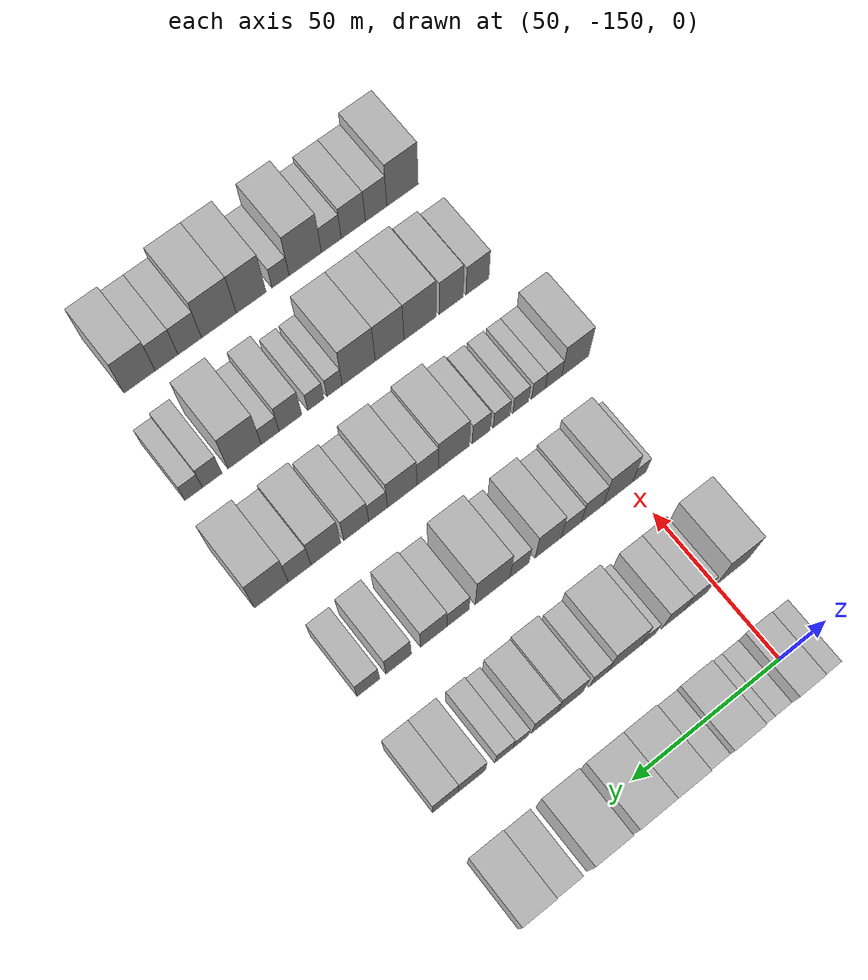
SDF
<sdf version="1.6">
 <world name="default">
  <model name="building_50">
   <static>1</static>
   <pose>50.0000 -154.1247 0 0.000000 0.000000 0.000000</pose>
   <link name="link">
    <pose>0 0 7.50 0 0 0</pose>
    <collision name="collision"><geometry><box><size>20.0000 6.9383 15.0000</size></box></geometry></collision>
    <visual name="visual">
     <cast_shadows>0</cast_shadows>
     <geometry><box><size>20.0000 6.9383 15.0000</size></box></geometry>
     <material>
      <script>
       <uri>model://HANNAS_wall/materials/scripts</uri>
       <uri>model://HANNAS_wall/materials/textures</uri>
       <name>vrc/HANNAS_wall</name>
      </script>
     </material>
    </visual>
   </link>
  </model>
  <model name="building_51">
   <static>1</static>
   <pose>50.0000 -146.2680 0 0.000000 0.000000 0.000000</pose>
   <link name="link">
    <pose>0 0 10.50 0 0 0</pose>
    <collision name="collision"><geometry><box><size>20.0000 8.7750 21.0000</size></box></geometry></collision>
    <visual name="visual">
     <cast_shadows>0</cast_shadows>
     <geometry><box><size>20.0000 8.7750 21.0000</size></box></geometry>
     <material>
      <script>
       <uri>model://HANNAS_wall/materials/scripts</uri>
       <uri>model://HANNAS_wall/materials/textures</uri>
       <name>vrc/HANNAS_wall</name>
      </script>
     </material>
    </visual>
   </link>
  </model>
  <model name="building_52">
   <static>1</static>
   <pose>50.0000 -139.1206 0 0.000000 0.000000 0.000000</pose>
   <link name="link">
    <pose>0 0 6.00 0 0 0</pose>
    <collision name="collision"><geometry><box><size>20.0000 5.5198 12.0000</size></box></geometry></collision>
    <visual name="visual">
     <cast_shadows>0</cast_shadows>
     <geometry><box><size>20.0000 5.5198 12.0000</size></box></geometry>
     <material>
      <script>
       <uri>model://HANNAS_wall/materials/scripts</uri>
       <uri>model://HANNAS_wall/materials/textures</uri>
       <name>vrc/HANNAS_wall</name>
      </script>
     </material>
    </visual>
   </link>
  </model>
  <model name="building_53">
   <static>1</static>
   <pose>50.0000 -133.7741 0 0.000000 0.000000 0.000000</pose>
   <link name="link">
    <pose>0 0 6.00 0 0 0</pose>
    <collision name="collision"><geometry><box><size>20.0000 5.1732 12.0000</size></box></geometry></collision>
    <visual name="visual">
     <cast_shadows>0</cast_shadows>
     <geometry><box><size>20.0000 5.1732 12.0000</size></box></geometry>
     <material>
      <script>
       <uri>model://HANNAS_wall/materials/scripts</uri>
       <uri>model://HANNAS_wall/materials/textures</uri>
       <name>vrc/HANNAS_wall</name>
      </script>
     </material>
    </visual>
   </link>
  </model>
  <model name="building_54">
   <static>1</static>
   <pose>50.0000 -126.0148 0 0.000000 0.000000 0.000000</pose>
   <link name="link">
    <pose>0 0 10.50 0 0 0</pose>
    <collision name="collision"><geometry><box><size>20.0000 10.3454 21.0000</size></box></geometry></collision>
    <visual name="visual">
     <cast_shadows>0</cast_shadows>
     <geometry><box><size>20.0000 10.3454 21.0000</size></box></geometry>
     <material>
      <script>
       <uri>model://HANNAS_wall/materials/scripts</uri>
       <uri>model://HANNAS_wall/materials/textures</uri>
       <name>vrc/HANNAS_wall</name>
      </script>
     </material>
    </visual>
   </link>
  </model>
  <model name="building_55">
   <static>1</static>
   <pose>50.0000 -117.3348 0 0.000000 0.000000 0.000000</pose>
   <link name="link">
    <pose>0 0 7.50 0 0 0</pose>
    <collision name="collision"><geometry><box><size>20.0000 7.0146 15.0000</size></box></geometry></collision>
    <visual name="visual">
     <cast_shadows>0</cast_shadows>
     <geometry><box><size>20.0000 7.0146 15.0000</size></box></geometry>
     <material>
      <script>
       <uri>model://HANNAS_wall/materials/scripts</uri>
       <uri>model://HANNAS_wall/materials/textures</uri>
       <name>vrc/HANNAS_wall</name>
      </script>
     </material>
    </visual>
   </link>
  </model>
  <model name="building_56">
   <static>1</static>
   <pose>50.0000 -107.5640 0 0.000000 0.000000 0.000000</pose>
   <link name="link">
    <pose>0 0 12.00 0 0 0</pose>
    <collision name="collision"><geometry><box><size>20.0000 10.5270 24.0000</size></box></geometry></collision>
    <visual name="visual">
     <cast_shadows>0</cast_shadows>
     <geometry><box><size>20.0000 10.5270 24.0000</size></box></geometry>
     <material>
      <script>
       <uri>model://HANNAS_wall/materials/scripts</uri>
       <uri>model://HANNAS_wall/materials/textures</uri>
       <name>vrc/HANNAS_wall</name>
      </script>
     </material>
    </visual>
   </link>
  </model>
  <model name="building_57">
   <static>1</static>
   <pose>50.0000 -96.4143 0 0.000000 0.000000 0.000000</pose>
   <link name="link">
    <pose>0 0 12.00 0 0 0</pose>
    <collision name="collision"><geometry><box><size>20.0000 11.7725 24.0000</size></box></geometry></collision>
    <visual name="visual">
     <cast_shadows>0</cast_shadows>
     <geometry><box><size>20.0000 11.7725 24.0000</size></box></geometry>
     <material>
      <script>
       <uri>model://HANNAS_wall/materials/scripts</uri>
       <uri>model://HANNAS_wall/materials/textures</uri>
       <name>vrc/HANNAS_wall</name>
      </script>
     </material>
    </visual>
   </link>
  </model>
  <model name="building_58">
   <static>1</static>
   <pose>50.0000 -82.6870 0 0.000000 0.000000 0.000000</pose>
   <link name="link">
    <pose>0 0 12.00 0 0 0</pose>
    <collision name="collision"><geometry><box><size>20.0000 11.6820 24.0000</size></box></geometry></collision>
    <visual name="visual">
     <cast_shadows>0</cast_shadows>
     <geometry><box><size>20.0000 11.6820 24.0000</size></box></geometry>
     <material>
      <script>
       <uri>model://HANNAS_wall/materials/scripts</uri>
       <uri>model://HANNAS_wall/materials/textures</uri>
       <name>vrc/HANNAS_wall</name>
      </script>
     </material>
    </visual>
   </link>
  </model>
  <model name="building_59">
   <static>1</static>
   <pose>50.0000 -69.5733 0 0.000000 0.000000 0.000000</pose>
   <link name="link">
    <pose>0 0 9.00 0 0 0</pose>
    <collision name="collision"><geometry><box><size>20.0000 8.5456 18.0000</size></box></geometry></collision>
    <visual name="visual">
     <cast_shadows>0</cast_shadows>
     <geometry><box><size>20.0000 8.5456 18.0000</size></box></geometry>
     <material>
      <script>
       <uri>model://HANNAS_wall/materials/scripts</uri>
       <uri>model://HANNAS_wall/materials/textures</uri>
       <name>vrc/HANNAS_wall</name>
      </script>
     </material>
    </visual>
   </link>
  </model>
  <model name="building_60">
   <static>1</static>
   <pose>50.0000 -60.0405 0 0.000000 0.000000 0.000000</pose>
   <link name="link">
    <pose>0 0 12.00 0 0 0</pose>
    <collision name="collision"><geometry><box><size>20.0000 10.5199 24.0000</size></box></geometry></collision>
    <visual name="visual">
     <cast_shadows>0</cast_shadows>
     <geometry><box><size>20.0000 10.5199 24.0000</size></box></geometry>
     <material>
      <script>
       <uri>model://HANNAS_wall/materials/scripts</uri>
       <uri>model://HANNAS_wall/materials/textures</uri>
       <name>vrc/HANNAS_wall</name>
      </script>
     </material>
    </visual>
   </link>
  </model>
  <model name="building_180">
   <static>1</static>
   <pose>85.0000 -155.5584 0 0.000000 0.000000 0.000000</pose>
   <link name="link">
    <pose>0 0 12.00 0 0 0</pose>
    <collision name="collision"><geometry><box><size>20.0000 11.1666 24.0000</size></box></geometry></collision>
    <visual name="visual">
     <cast_shadows>0</cast_shadows>
     <geometry><box><size>20.0000 11.1666 24.0000</size></box></geometry>
     <material>
      <script>
       <uri>model://HANNAS_wall/materials/scripts</uri>
       <uri>model://HANNAS_wall/materials/textures</uri>
       <name>vrc/HANNAS_wall</name>
      </script>
     </material>
    </visual>
   </link>
  </model>
  <model name="building_181">
   <static>1</static>
   <pose>85.0000 -142.9468 0 0.000000 0.000000 0.000000</pose>
   <link name="link">
    <pose>0 0 9.00 0 0 0</pose>
    <collision name="collision"><geometry><box><size>20.0000 8.0565 18.0000</size></box></geometry></collision>
    <visual name="visual">
     <cast_shadows>0</cast_shadows>
     <geometry><box><size>20.0000 8.0565 18.0000</size></box></geometry>
     <material>
      <script>
       <uri>model://HANNAS_wall/materials/scripts</uri>
       <uri>model://HANNAS_wall/materials/textures</uri>
       <name>vrc/HANNAS_wall</name>
      </script>
     </material>
    </visual>
   </link>
  </model>
  <model name="building_182">
   <static>1</static>
   <pose>85.0000 -135.1040 0 0.000000 0.000000 0.000000</pose>
   <link name="link">
    <pose>0 0 9.00 0 0 0</pose>
    <collision name="collision"><geometry><box><size>20.0000 7.6291 18.0000</size></box></geometry></collision>
    <visual name="visual">
     <cast_shadows>0</cast_shadows>
     <geometry><box><size>20.0000 7.6291 18.0000</size></box></geometry>
     <material>
      <script>
       <uri>model://HANNAS_wall/materials/scripts</uri>
       <uri>model://HANNAS_wall/materials/textures</uri>
       <name>vrc/HANNAS_wall</name>
      </script>
     </material>
    </visual>
   </link>
  </model>
  <model name="building_183">
   <static>1</static>
   <pose>85.0000 -126.8240 0 0.000000 0.000000 0.000000</pose>
   <link name="link">
    <pose>0 0 6.00 0 0 0</pose>
    <collision name="collision"><geometry><box><size>20.0000 4.9309 12.0000</size></box></geometry></collision>
    <visual name="visual">
     <cast_shadows>0</cast_shadows>
     <geometry><box><size>20.0000 4.9309 12.0000</size></box></geometry>
     <material>
      <script>
       <uri>model://HANNAS_wall/materials/scripts</uri>
       <uri>model://HANNAS_wall/materials/textures</uri>
       <name>vrc/HANNAS_wall</name>
      </script>
     </material>
    </visual>
   </link>
  </model>
  <model name="building_184">
   <static>1</static>
   <pose>85.0000 -118.6342 0 0.000000 0.000000 0.000000</pose>
   <link name="link">
    <pose>0 0 12.00 0 0 0</pose>
    <collision name="collision"><geometry><box><size>20.0000 11.4488 24.0000</size></box></geometry></collision>
    <visual name="visual">
     <cast_shadows>0</cast_shadows>
     <geometry><box><size>20.0000 11.4488 24.0000</size></box></geometry>
     <material>
      <script>
       <uri>model://HANNAS_wall/materials/scripts</uri>
       <uri>model://HANNAS_wall/materials/textures</uri>
       <name>vrc/HANNAS_wall</name>
      </script>
     </material>
    </visual>
   </link>
  </model>
  <model name="building_185">
   <static>1</static>
   <pose>85.0000 -109.8311 0 0.000000 0.000000 0.000000</pose>
   <link name="link">
    <pose>0 0 7.50 0 0 0</pose>
    <collision name="collision"><geometry><box><size>20.0000 6.1575 15.0000</size></box></geometry></collision>
    <visual name="visual">
     <cast_shadows>0</cast_shadows>
     <geometry><box><size>20.0000 6.1575 15.0000</size></box></geometry>
     <material>
      <script>
       <uri>model://HANNAS_wall/materials/scripts</uri>
       <uri>model://HANNAS_wall/materials/textures</uri>
       <name>vrc/HANNAS_wall</name>
      </script>
     </material>
    </visual>
   </link>
  </model>
  <model name="building_186">
   <static>1</static>
   <pose>85.0000 -100.3674 0 0.000000 0.000000 0.000000</pose>
   <link name="link">
    <pose>0 0 10.50 0 0 0</pose>
    <collision name="collision"><geometry><box><size>20.0000 8.7698 21.0000</size></box></geometry></collision>
    <visual name="visual">
     <cast_shadows>0</cast_shadows>
     <geometry><box><size>20.0000 8.7698 21.0000</size></box></geometry>
     <material>
      <script>
       <uri>model://HANNAS_wall/materials/scripts</uri>
       <uri>model://HANNAS_wall/materials/textures</uri>
       <name>vrc/HANNAS_wall</name>
      </script>
     </material>
    </visual>
   </link>
  </model>
  <model name="building_187">
   <static>1</static>
   <pose>85.0000 -91.7624 0 0.000000 0.000000 0.000000</pose>
   <link name="link">
    <pose>0 0 9.00 0 0 0</pose>
    <collision name="collision"><geometry><box><size>20.0000 8.4401 18.0000</size></box></geometry></collision>
    <visual name="visual">
     <cast_shadows>0</cast_shadows>
     <geometry><box><size>20.0000 8.4401 18.0000</size></box></geometry>
     <material>
      <script>
       <uri>model://HANNAS_wall/materials/scripts</uri>
       <uri>model://HANNAS_wall/materials/textures</uri>
       <name>vrc/HANNAS_wall</name>
      </script>
     </material>
    </visual>
   </link>
  </model>
  <model name="building_188">
   <static>1</static>
   <pose>85.0000 -84.0880 0 0.000000 0.000000 0.000000</pose>
   <link name="link">
    <pose>0 0 6.00 0 0 0</pose>
    <collision name="collision"><geometry><box><size>20.0000 4.9088 12.0000</size></box></geometry></collision>
    <visual name="visual">
     <cast_shadows>0</cast_shadows>
     <geometry><box><size>20.0000 4.9088 12.0000</size></box></geometry>
     <material>
      <script>
       <uri>model://HANNAS_wall/materials/scripts</uri>
       <uri>model://HANNAS_wall/materials/textures</uri>
       <name>vrc/HANNAS_wall</name>
      </script>
     </material>
    </visual>
   </link>
  </model>
  <model name="building_189">
   <static>1</static>
   <pose>85.0000 -78.6306 0 0.000000 0.000000 0.000000</pose>
   <link name="link">
    <pose>0 0 7.50 0 0 0</pose>
    <collision name="collision"><geometry><box><size>20.0000 6.0060 15.0000</size></box></geometry></collision>
    <visual name="visual">
     <cast_shadows>0</cast_shadows>
     <geometry><box><size>20.0000 6.0060 15.0000</size></box></geometry>
     <material>
      <script>
       <uri>model://HANNAS_wall/materials/scripts</uri>
       <uri>model://HANNAS_wall/materials/textures</uri>
       <name>vrc/HANNAS_wall</name>
      </script>
     </material>
    </visual>
   </link>
  </model>
  <model name="building_190">
   <static>1</static>
   <pose>85.0000 -68.2394 0 0.000000 0.000000 0.000000</pose>
   <link name="link">
    <pose>0 0 9.00 0 0 0</pose>
    <collision name="collision"><geometry><box><size>20.0000 8.7764 18.0000</size></box></geometry></collision>
    <visual name="visual">
     <cast_shadows>0</cast_shadows>
     <geometry><box><size>20.0000 8.7764 18.0000</size></box></geometry>
     <material>
      <script>
       <uri>model://HANNAS_wall/materials/scripts</uri>
       <uri>model://HANNAS_wall/materials/textures</uri>
       <name>vrc/HANNAS_wall</name>
      </script>
     </material>
    </visual>
   </link>
  </model>
  <model name="building_191">
   <static>1</static>
   <pose>85.0000 -59.7514 0 0.000000 0.000000 0.000000</pose>
   <link name="link">
    <pose>0 0 9.00 0 0 0</pose>
    <collision name="collision"><geometry><box><size>20.0000 8.1997 18.0000</size></box></geometry></collision>
    <visual name="visual">
     <cast_shadows>0</cast_shadows>
     <geometry><box><size>20.0000 8.1997 18.0000</size></box></geometry>
     <material>
      <script>
       <uri>model://HANNAS_wall/materials/scripts</uri>
       <uri>model://HANNAS_wall/materials/textures</uri>
       <name>vrc/HANNAS_wall</name>
      </script>
     </material>
    </visual>
   </link>
  </model>
  <model name="building_314">
   <static>1</static>
   <pose>120.0000 -153.4130 0 0.000000 0.000000 0.000000</pose>
   <link name="link">
    <pose>0 0 6.00 0 0 0</pose>
    <collision name="collision"><geometry><box><size>20.0000 4.9438 12.0000</size></box></geometry></collision>
    <visual name="visual">
     <cast_shadows>0</cast_shadows>
     <geometry><box><size>20.0000 4.9438 12.0000</size></box></geometry>
     <material>
      <script>
       <uri>model://HANNAS_wall/materials/scripts</uri>
       <uri>model://HANNAS_wall/materials/textures</uri>
       <name>vrc/HANNAS_wall</name>
      </script>
     </material>
    </visual>
   </link>
  </model>
  <model name="building_315">
   <static>1</static>
   <pose>120.0000 -145.8391 0 0.000000 0.000000 0.000000</pose>
   <link name="link">
    <pose>0 0 12.00 0 0 0</pose>
    <collision name="collision"><geometry><box><size>20.0000 10.2041 24.0000</size></box></geometry></collision>
    <visual name="visual">
     <cast_shadows>0</cast_shadows>
     <geometry><box><size>20.0000 10.2041 24.0000</size></box></geometry>
     <material>
      <script>
       <uri>model://HANNAS_wall/materials/scripts</uri>
       <uri>model://HANNAS_wall/materials/textures</uri>
       <name>vrc/HANNAS_wall</name>
      </script>
     </material>
    </visual>
   </link>
  </model>
  <model name="building_316">
   <static>1</static>
   <pose>120.0000 -136.9852 0 0.000000 0.000000 0.000000</pose>
   <link name="link">
    <pose>0 0 9.00 0 0 0</pose>
    <collision name="collision"><geometry><box><size>20.0000 7.5036 18.0000</size></box></geometry></collision>
    <visual name="visual">
     <cast_shadows>0</cast_shadows>
     <geometry><box><size>20.0000 7.5036 18.0000</size></box></geometry>
     <material>
      <script>
       <uri>model://HANNAS_wall/materials/scripts</uri>
       <uri>model://HANNAS_wall/materials/textures</uri>
       <name>vrc/HANNAS_wall</name>
      </script>
     </material>
    </visual>
   </link>
  </model>
  <model name="building_317">
   <static>1</static>
   <pose>120.0000 -129.7985 0 0.000000 0.000000 0.000000</pose>
   <link name="link">
    <pose>0 0 7.50 0 0 0</pose>
    <collision name="collision"><geometry><box><size>20.0000 6.8698 15.0000</size></box></geometry></collision>
    <visual name="visual">
     <cast_shadows>0</cast_shadows>
     <geometry><box><size>20.0000 6.8698 15.0000</size></box></geometry>
     <material>
      <script>
       <uri>model://HANNAS_wall/materials/scripts</uri>
       <uri>model://HANNAS_wall/materials/textures</uri>
       <name>vrc/HANNAS_wall</name>
      </script>
     </material>
    </visual>
   </link>
  </model>
  <model name="building_318">
   <static>1</static>
   <pose>120.0000 -121.8906 0 0.000000 0.000000 0.000000</pose>
   <link name="link">
    <pose>0 0 10.50 0 0 0</pose>
    <collision name="collision"><geometry><box><size>20.0000 8.9460 21.0000</size></box></geometry></collision>
    <visual name="visual">
     <cast_shadows>0</cast_shadows>
     <geometry><box><size>20.0000 8.9460 21.0000</size></box></geometry>
     <material>
      <script>
       <uri>model://HANNAS_wall/materials/scripts</uri>
       <uri>model://HANNAS_wall/materials/textures</uri>
       <name>vrc/HANNAS_wall</name>
      </script>
     </material>
    </visual>
   </link>
  </model>
  <model name="building_319">
   <static>1</static>
   <pose>120.0000 -112.1846 0 0.000000 0.000000 0.000000</pose>
   <link name="link">
    <pose>0 0 7.50 0 0 0</pose>
    <collision name="collision"><geometry><box><size>20.0000 6.4660 15.0000</size></box></geometry></collision>
    <visual name="visual">
     <cast_shadows>0</cast_shadows>
     <geometry><box><size>20.0000 6.4660 15.0000</size></box></geometry>
     <material>
      <script>
       <uri>model://HANNAS_wall/materials/scripts</uri>
       <uri>model://HANNAS_wall/materials/textures</uri>
       <name>vrc/HANNAS_wall</name>
      </script>
     </material>
    </visual>
   </link>
  </model>
  <model name="building_320">
   <static>1</static>
   <pose>120.0000 -103.1216 0 0.000000 0.000000 0.000000</pose>
   <link name="link">
    <pose>0 0 12.00 0 0 0</pose>
    <collision name="collision"><geometry><box><size>20.0000 11.6601 24.0000</size></box></geometry></collision>
    <visual name="visual">
     <cast_shadows>0</cast_shadows>
     <geometry><box><size>20.0000 11.6601 24.0000</size></box></geometry>
     <material>
      <script>
       <uri>model://HANNAS_wall/materials/scripts</uri>
       <uri>model://HANNAS_wall/materials/textures</uri>
       <name>vrc/HANNAS_wall</name>
      </script>
     </material>
    </visual>
   </link>
  </model>
  <model name="building_321">
   <static>1</static>
   <pose>120.0000 -91.6009 0 0.000000 0.000000 0.000000</pose>
   <link name="link">
    <pose>0 0 7.50 0 0 0</pose>
    <collision name="collision"><geometry><box><size>20.0000 7.3813 15.0000</size></box></geometry></collision>
    <visual name="visual">
     <cast_shadows>0</cast_shadows>
     <geometry><box><size>20.0000 7.3813 15.0000</size></box></geometry>
     <material>
      <script>
       <uri>model://HANNAS_wall/materials/scripts</uri>
       <uri>model://HANNAS_wall/materials/textures</uri>
       <name>vrc/HANNAS_wall</name>
      </script>
     </material>
    </visual>
   </link>
  </model>
  <model name="building_322">
   <static>1</static>
   <pose>120.0000 -83.5538 0 0.000000 0.000000 0.000000</pose>
   <link name="link">
    <pose>0 0 9.00 0 0 0</pose>
    <collision name="collision"><geometry><box><size>20.0000 8.7128 18.0000</size></box></geometry></collision>
    <visual name="visual">
     <cast_shadows>0</cast_shadows>
     <geometry><box><size>20.0000 8.7128 18.0000</size></box></geometry>
     <material>
      <script>
       <uri>model://HANNAS_wall/materials/scripts</uri>
       <uri>model://HANNAS_wall/materials/textures</uri>
       <name>vrc/HANNAS_wall</name>
      </script>
     </material>
    </visual>
   </link>
  </model>
  <model name="building_323">
   <static>1</static>
   <pose>120.0000 -72.0490 0 0.000000 0.000000 0.000000</pose>
   <link name="link">
    <pose>0 0 9.00 0 0 0</pose>
    <collision name="collision"><geometry><box><size>20.0000 8.2967 18.0000</size></box></geometry></collision>
    <visual name="visual">
     <cast_shadows>0</cast_shadows>
     <geometry><box><size>20.0000 8.2967 18.0000</size></box></geometry>
     <material>
      <script>
       <uri>model://HANNAS_wall/materials/scripts</uri>
       <uri>model://HANNAS_wall/materials/textures</uri>
       <name>vrc/HANNAS_wall</name>
      </script>
     </material>
    </visual>
   </link>
  </model>
  <model name="building_324">
   <static>1</static>
   <pose>120.0000 -62.2350 0 0.000000 0.000000 0.000000</pose>
   <link name="link">
    <pose>0 0 7.50 0 0 0</pose>
    <collision name="collision"><geometry><box><size>20.0000 7.3315 15.0000</size></box></geometry></collision>
    <visual name="visual">
     <cast_shadows>0</cast_shadows>
     <geometry><box><size>20.0000 7.3315 15.0000</size></box></geometry>
     <material>
      <script>
       <uri>model://HANNAS_wall/materials/scripts</uri>
       <uri>model://HANNAS_wall/materials/textures</uri>
       <name>vrc/HANNAS_wall</name>
      </script>
     </material>
    </visual>
   </link>
  </model>
  <model name="building_442">
   <static>1</static>
   <pose>155.0000 -160.1801 0 0.000000 0.000000 0.000000</pose>
   <link name="link">
    <pose>0 0 10.50 0 0 0</pose>
    <collision name="collision"><geometry><box><size>20.0000 9.5650 21.0000</size></box></geometry></collision>
    <visual name="visual">
     <cast_shadows>0</cast_shadows>
     <geometry><box><size>20.0000 9.5650 21.0000</size></box></geometry>
     <material>
      <script>
       <uri>model://HANNAS_wall/materials/scripts</uri>
       <uri>model://HANNAS_wall/materials/textures</uri>
       <name>vrc/HANNAS_wall</name>
      </script>
     </material>
    </visual>
   </link>
  </model>
  <model name="building_443">
   <static>1</static>
   <pose>155.0000 -152.5112 0 0.000000 0.000000 0.000000</pose>
   <link name="link">
    <pose>0 0 6.00 0 0 0</pose>
    <collision name="collision"><geometry><box><size>20.0000 5.7727 12.0000</size></box></geometry></collision>
    <visual name="visual">
     <cast_shadows>0</cast_shadows>
     <geometry><box><size>20.0000 5.7727 12.0000</size></box></geometry>
     <material>
      <script>
       <uri>model://HANNAS_wall/materials/scripts</uri>
       <uri>model://HANNAS_wall/materials/textures</uri>
       <name>vrc/HANNAS_wall</name>
      </script>
     </material>
    </visual>
   </link>
  </model>
  <model name="building_444">
   <static>1</static>
   <pose>155.0000 -147.2015 0 0.000000 0.000000 0.000000</pose>
   <link name="link">
    <pose>0 0 6.00 0 0 0</pose>
    <collision name="collision"><geometry><box><size>20.0000 4.8467 12.0000</size></box></geometry></collision>
    <visual name="visual">
     <cast_shadows>0</cast_shadows>
     <geometry><box><size>20.0000 4.8467 12.0000</size></box></geometry>
     <material>
      <script>
       <uri>model://HANNAS_wall/materials/scripts</uri>
       <uri>model://HANNAS_wall/materials/textures</uri>
       <name>vrc/HANNAS_wall</name>
      </script>
     </material>
    </visual>
   </link>
  </model>
  <model name="building_445">
   <static>1</static>
   <pose>155.0000 -141.0176 0 0.000000 0.000000 0.000000</pose>
   <link name="link">
    <pose>0 0 6.00 0 0 0</pose>
    <collision name="collision"><geometry><box><size>20.0000 5.5211 12.0000</size></box></geometry></collision>
    <visual name="visual">
     <cast_shadows>0</cast_shadows>
     <geometry><box><size>20.0000 5.5211 12.0000</size></box></geometry>
     <material>
      <script>
       <uri>model://HANNAS_wall/materials/scripts</uri>
       <uri>model://HANNAS_wall/materials/textures</uri>
       <name>vrc/HANNAS_wall</name>
      </script>
     </material>
    </visual>
   </link>
  </model>
  <model name="building_446">
   <static>1</static>
   <pose>155.0000 -134.3441 0 0.000000 0.000000 0.000000</pose>
   <link name="link">
    <pose>0 0 6.00 0 0 0</pose>
    <collision name="collision"><geometry><box><size>20.0000 5.8261 12.0000</size></box></geometry></collision>
    <visual name="visual">
     <cast_shadows>0</cast_shadows>
     <geometry><box><size>20.0000 5.8261 12.0000</size></box></geometry>
     <material>
      <script>
       <uri>model://HANNAS_wall/materials/scripts</uri>
       <uri>model://HANNAS_wall/materials/textures</uri>
       <name>vrc/HANNAS_wall</name>
      </script>
     </material>
    </visual>
   </link>
  </model>
  <model name="building_447">
   <static>1</static>
   <pose>155.0000 -127.3208 0 0.000000 0.000000 0.000000</pose>
   <link name="link">
    <pose>0 0 7.50 0 0 0</pose>
    <collision name="collision"><geometry><box><size>20.0000 6.2203 15.0000</size></box></geometry></collision>
    <visual name="visual">
     <cast_shadows>0</cast_shadows>
     <geometry><box><size>20.0000 6.2203 15.0000</size></box></geometry>
     <material>
      <script>
       <uri>model://HANNAS_wall/materials/scripts</uri>
       <uri>model://HANNAS_wall/materials/textures</uri>
       <name>vrc/HANNAS_wall</name>
      </script>
     </material>
    </visual>
   </link>
  </model>
  <model name="building_448">
   <static>1</static>
   <pose>155.0000 -118.0221 0 0.000000 0.000000 0.000000</pose>
   <link name="link">
    <pose>0 0 10.50 0 0 0</pose>
    <collision name="collision"><geometry><box><size>20.0000 10.3772 21.0000</size></box></geometry></collision>
    <visual name="visual">
     <cast_shadows>0</cast_shadows>
     <geometry><box><size>20.0000 10.3772 21.0000</size></box></geometry>
     <material>
      <script>
       <uri>model://HANNAS_wall/materials/scripts</uri>
       <uri>model://HANNAS_wall/materials/textures</uri>
       <name>vrc/HANNAS_wall</name>
      </script>
     </material>
    </visual>
   </link>
  </model>
  <model name="building_449">
   <static>1</static>
   <pose>155.0000 -109.1609 0 0.000000 0.000000 0.000000</pose>
   <link name="link">
    <pose>0 0 9.00 0 0 0</pose>
    <collision name="collision"><geometry><box><size>20.0000 7.3452 18.0000</size></box></geometry></collision>
    <visual name="visual">
     <cast_shadows>0</cast_shadows>
     <geometry><box><size>20.0000 7.3452 18.0000</size></box></geometry>
     <material>
      <script>
       <uri>model://HANNAS_wall/materials/scripts</uri>
       <uri>model://HANNAS_wall/materials/textures</uri>
       <name>vrc/HANNAS_wall</name>
      </script>
     </material>
    </visual>
   </link>
  </model>
  <model name="building_450">
   <static>1</static>
   <pose>155.0000 -100.4964 0 0.000000 0.000000 0.000000</pose>
   <link name="link">
    <pose>0 0 10.50 0 0 0</pose>
    <collision name="collision"><geometry><box><size>20.0000 9.9838 21.0000</size></box></geometry></collision>
    <visual name="visual">
     <cast_shadows>0</cast_shadows>
     <geometry><box><size>20.0000 9.9838 21.0000</size></box></geometry>
     <material>
      <script>
       <uri>model://HANNAS_wall/materials/scripts</uri>
       <uri>model://HANNAS_wall/materials/textures</uri>
       <name>vrc/HANNAS_wall</name>
      </script>
     </material>
    </visual>
   </link>
  </model>
  <model name="building_451">
   <static>1</static>
   <pose>155.0000 -92.3614 0 0.000000 0.000000 0.000000</pose>
   <link name="link">
    <pose>0 0 7.50 0 0 0</pose>
    <collision name="collision"><geometry><box><size>20.0000 6.2861 15.0000</size></box></geometry></collision>
    <visual name="visual">
     <cast_shadows>0</cast_shadows>
     <geometry><box><size>20.0000 6.2861 15.0000</size></box></geometry>
     <material>
      <script>
       <uri>model://HANNAS_wall/materials/scripts</uri>
       <uri>model://HANNAS_wall/materials/textures</uri>
       <name>vrc/HANNAS_wall</name>
      </script>
     </material>
    </visual>
   </link>
  </model>
  <model name="building_452">
   <static>1</static>
   <pose>155.0000 -85.0545 0 0.000000 0.000000 0.000000</pose>
   <link name="link">
    <pose>0 0 9.00 0 0 0</pose>
    <collision name="collision"><geometry><box><size>20.0000 8.3277 18.0000</size></box></geometry></collision>
    <visual name="visual">
     <cast_shadows>0</cast_shadows>
     <geometry><box><size>20.0000 8.3277 18.0000</size></box></geometry>
     <material>
      <script>
       <uri>model://HANNAS_wall/materials/scripts</uri>
       <uri>model://HANNAS_wall/materials/textures</uri>
       <name>vrc/HANNAS_wall</name>
      </script>
     </material>
    </visual>
   </link>
  </model>
  <model name="building_453">
   <static>1</static>
   <pose>155.0000 -74.9885 0 0.000000 0.000000 0.000000</pose>
   <link name="link">
    <pose>0 0 10.50 0 0 0</pose>
    <collision name="collision"><geometry><box><size>20.0000 9.8044 21.0000</size></box></geometry></collision>
    <visual name="visual">
     <cast_shadows>0</cast_shadows>
     <geometry><box><size>20.0000 9.8044 21.0000</size></box></geometry>
     <material>
      <script>
       <uri>model://HANNAS_wall/materials/scripts</uri>
       <uri>model://HANNAS_wall/materials/textures</uri>
       <name>vrc/HANNAS_wall</name>
      </script>
     </material>
    </visual>
   </link>
  </model>
  <model name="building_454">
   <static>1</static>
   <pose>155.0000 -66.3753 0 0.000000 0.000000 0.000000</pose>
   <link name="link">
    <pose>0 0 9.00 0 0 0</pose>
    <collision name="collision"><geometry><box><size>20.0000 7.4220 18.0000</size></box></geometry></collision>
    <visual name="visual">
     <cast_shadows>0</cast_shadows>
     <geometry><box><size>20.0000 7.4220 18.0000</size></box></geometry>
     <material>
      <script>
       <uri>model://HANNAS_wall/materials/scripts</uri>
       <uri>model://HANNAS_wall/materials/textures</uri>
       <name>vrc/HANNAS_wall</name>
      </script>
     </material>
    </visual>
   </link>
  </model>
  <model name="building_455">
   <static>1</static>
   <pose>155.0000 -57.1341 0 0.000000 0.000000 0.000000</pose>
   <link name="link">
    <pose>0 0 12.00 0 0 0</pose>
    <collision name="collision"><geometry><box><size>20.0000 11.0603 24.0000</size></box></geometry></collision>
    <visual name="visual">
     <cast_shadows>0</cast_shadows>
     <geometry><box><size>20.0000 11.0603 24.0000</size></box></geometry>
     <material>
      <script>
       <uri>model://HANNAS_wall/materials/scripts</uri>
       <uri>model://HANNAS_wall/materials/textures</uri>
       <name>vrc/HANNAS_wall</name>
      </script>
     </material>
    </visual>
   </link>
  </model>
  <model name="building_574">
   <static>1</static>
   <pose>190.0000 -154.0224 0 0.000000 0.000000 0.000000</pose>
   <link name="link">
    <pose>0 0 9.00 0 0 0</pose>
    <collision name="collision"><geometry><box><size>20.0000 8.0999 18.0000</size></box></geometry></collision>
    <visual name="visual">
     <cast_shadows>0</cast_shadows>
     <geometry><box><size>20.0000 8.0999 18.0000</size></box></geometry>
     <material>
      <script>
       <uri>model://HANNAS_wall/materials/scripts</uri>
       <uri>model://HANNAS_wall/materials/textures</uri>
       <name>vrc/HANNAS_wall</name>
      </script>
     </material>
    </visual>
   </link>
  </model>
  <model name="building_575">
   <static>1</static>
   <pose>190.0000 -144.7650 0 0.000000 0.000000 0.000000</pose>
   <link name="link">
    <pose>0 0 10.50 0 0 0</pose>
    <collision name="collision"><geometry><box><size>20.0000 8.4148 21.0000</size></box></geometry></collision>
    <visual name="visual">
     <cast_shadows>0</cast_shadows>
     <geometry><box><size>20.0000 8.4148 21.0000</size></box></geometry>
     <material>
      <script>
       <uri>model://HANNAS_wall/materials/scripts</uri>
       <uri>model://HANNAS_wall/materials/textures</uri>
       <name>vrc/HANNAS_wall</name>
      </script>
     </material>
    </visual>
   </link>
  </model>
  <model name="building_576">
   <static>1</static>
   <pose>190.0000 -133.9152 0 0.000000 0.000000 0.000000</pose>
   <link name="link">
    <pose>0 0 12.00 0 0 0</pose>
    <collision name="collision"><geometry><box><size>20.0000 11.2849 24.0000</size></box></geometry></collision>
    <visual name="visual">
     <cast_shadows>0</cast_shadows>
     <geometry><box><size>20.0000 11.2849 24.0000</size></box></geometry>
     <material>
      <script>
       <uri>model://HANNAS_wall/materials/scripts</uri>
       <uri>model://HANNAS_wall/materials/textures</uri>
       <name>vrc/HANNAS_wall</name>
      </script>
     </material>
    </visual>
   </link>
  </model>
  <model name="building_577">
   <static>1</static>
   <pose>190.0000 -123.2829 0 0.000000 0.000000 0.000000</pose>
   <link name="link">
    <pose>0 0 12.00 0 0 0</pose>
    <collision name="collision"><geometry><box><size>20.0000 9.9796 24.0000</size></box></geometry></collision>
    <visual name="visual">
     <cast_shadows>0</cast_shadows>
     <geometry><box><size>20.0000 9.9796 24.0000</size></box></geometry>
     <material>
      <script>
       <uri>model://HANNAS_wall/materials/scripts</uri>
       <uri>model://HANNAS_wall/materials/textures</uri>
       <name>vrc/HANNAS_wall</name>
      </script>
     </material>
    </visual>
   </link>
  </model>
  <model name="building_578">
   <static>1</static>
   <pose>190.0000 -112.6325 0 0.000000 0.000000 0.000000</pose>
   <link name="link">
    <pose>0 0 12.00 0 0 0</pose>
    <collision name="collision"><geometry><box><size>20.0000 11.3212 24.0000</size></box></geometry></collision>
    <visual name="visual">
     <cast_shadows>0</cast_shadows>
     <geometry><box><size>20.0000 11.3212 24.0000</size></box></geometry>
     <material>
      <script>
       <uri>model://HANNAS_wall/materials/scripts</uri>
       <uri>model://HANNAS_wall/materials/textures</uri>
       <name>vrc/HANNAS_wall</name>
      </script>
     </material>
    </visual>
   </link>
  </model>
  <model name="building_579">
   <static>1</static>
   <pose>190.0000 -104.3531 0 0.000000 0.000000 0.000000</pose>
   <link name="link">
    <pose>0 0 6.00 0 0 0</pose>
    <collision name="collision"><geometry><box><size>20.0000 5.2376 12.0000</size></box></geometry></collision>
    <visual name="visual">
     <cast_shadows>0</cast_shadows>
     <geometry><box><size>20.0000 5.2376 12.0000</size></box></geometry>
     <material>
      <script>
       <uri>model://HANNAS_wall/materials/scripts</uri>
       <uri>model://HANNAS_wall/materials/textures</uri>
       <name>vrc/HANNAS_wall</name>
      </script>
     </material>
    </visual>
   </link>
  </model>
  <model name="building_580">
   <static>1</static>
   <pose>190.0000 -97.9923 0 0.000000 0.000000 0.000000</pose>
   <link name="link">
    <pose>0 0 6.00 0 0 0</pose>
    <collision name="collision"><geometry><box><size>20.0000 5.4839 12.0000</size></box></geometry></collision>
    <visual name="visual">
     <cast_shadows>0</cast_shadows>
     <geometry><box><size>20.0000 5.4839 12.0000</size></box></geometry>
     <material>
      <script>
       <uri>model://HANNAS_wall/materials/scripts</uri>
       <uri>model://HANNAS_wall/materials/textures</uri>
       <name>vrc/HANNAS_wall</name>
      </script>
     </material>
    </visual>
   </link>
  </model>
  <model name="building_581">
   <static>1</static>
   <pose>190.0000 -89.4275 0 0.000000 0.000000 0.000000</pose>
   <link name="link">
    <pose>0 0 9.00 0 0 0</pose>
    <collision name="collision"><geometry><box><size>20.0000 7.6458 18.0000</size></box></geometry></collision>
    <visual name="visual">
     <cast_shadows>0</cast_shadows>
     <geometry><box><size>20.0000 7.6458 18.0000</size></box></geometry>
     <material>
      <script>
       <uri>model://HANNAS_wall/materials/scripts</uri>
       <uri>model://HANNAS_wall/materials/textures</uri>
       <name>vrc/HANNAS_wall</name>
      </script>
     </material>
    </visual>
   </link>
  </model>
  <model name="building_582">
   <static>1</static>
   <pose>190.0000 -82.6264 0 0.000000 0.000000 0.000000</pose>
   <link name="link">
    <pose>0 0 6.00 0 0 0</pose>
    <collision name="collision"><geometry><box><size>20.0000 5.9564 12.0000</size></box></geometry></collision>
    <visual name="visual">
     <cast_shadows>0</cast_shadows>
     <geometry><box><size>20.0000 5.9564 12.0000</size></box></geometry>
     <material>
      <script>
       <uri>model://HANNAS_wall/materials/scripts</uri>
       <uri>model://HANNAS_wall/materials/textures</uri>
       <name>vrc/HANNAS_wall</name>
      </script>
     </material>
    </visual>
   </link>
  </model>
  <model name="building_583">
   <static>1</static>
   <pose>190.0000 -74.1067 0 0.000000 0.000000 0.000000</pose>
   <link name="link">
    <pose>0 0 12.00 0 0 0</pose>
    <collision name="collision"><geometry><box><size>20.0000 11.0831 24.0000</size></box></geometry></collision>
    <visual name="visual">
     <cast_shadows>0</cast_shadows>
     <geometry><box><size>20.0000 11.0831 24.0000</size></box></geometry>
     <material>
      <script>
       <uri>model://HANNAS_wall/materials/scripts</uri>
       <uri>model://HANNAS_wall/materials/textures</uri>
       <name>vrc/HANNAS_wall</name>
      </script>
     </material>
    </visual>
   </link>
  </model>
  <model name="building_584">
   <static>1</static>
   <pose>190.0000 -63.3398 0 0.000000 0.000000 0.000000</pose>
   <link name="link">
    <pose>0 0 7.50 0 0 0</pose>
    <collision name="collision"><geometry><box><size>20.0000 6.4507 15.0000</size></box></geometry></collision>
    <visual name="visual">
     <cast_shadows>0</cast_shadows>
     <geometry><box><size>20.0000 6.4507 15.0000</size></box></geometry>
     <material>
      <script>
       <uri>model://HANNAS_wall/materials/scripts</uri>
       <uri>model://HANNAS_wall/materials/textures</uri>
       <name>vrc/HANNAS_wall</name>
      </script>
     </material>
    </visual>
   </link>
  </model>
  <model name="building_585">
   <static>1</static>
   <pose>190.0000 -57.2360 0 0.000000 0.000000 0.000000</pose>
   <link name="link">
    <pose>0 0 6.00 0 0 0</pose>
    <collision name="collision"><geometry><box><size>20.0000 5.7569 12.0000</size></box></geometry></collision>
    <visual name="visual">
     <cast_shadows>0</cast_shadows>
     <geometry><box><size>20.0000 5.7569 12.0000</size></box></geometry>
     <material>
      <script>
       <uri>model://HANNAS_wall/materials/scripts</uri>
       <uri>model://HANNAS_wall/materials/textures</uri>
       <name>vrc/HANNAS_wall</name>
      </script>
     </material>
    </visual>
   </link>
  </model>
  <model name="building_700">
   <static>1</static>
   <pose>225.0000 -154.9459 0 0.000000 0.000000 0.000000</pose>
   <link name="link">
    <pose>0 0 12.00 0 0 0</pose>
    <collision name="collision"><geometry><box><size>20.0000 11.2387 24.0000</size></box></geometry></collision>
    <visual name="visual">
     <cast_shadows>0</cast_shadows>
     <geometry><box><size>20.0000 11.2387 24.0000</size></box></geometry>
     <material>
      <script>
       <uri>model://HANNAS_wall/materials/scripts</uri>
       <uri>model://HANNAS_wall/materials/textures</uri>
       <name>vrc/HANNAS_wall</name>
      </script>
     </material>
    </visual>
   </link>
  </model>
  <model name="building_701">
   <static>1</static>
   <pose>225.0000 -145.5205 0 0.000000 0.000000 0.000000</pose>
   <link name="link">
    <pose>0 0 9.00 0 0 0</pose>
    <collision name="collision"><geometry><box><size>20.0000 7.6122 18.0000</size></box></geometry></collision>
    <visual name="visual">
     <cast_shadows>0</cast_shadows>
     <geometry><box><size>20.0000 7.6122 18.0000</size></box></geometry>
     <material>
      <script>
       <uri>model://HANNAS_wall/materials/scripts</uri>
       <uri>model://HANNAS_wall/materials/textures</uri>
       <name>vrc/HANNAS_wall</name>
      </script>
     </material>
    </visual>
   </link>
  </model>
  <model name="building_702">
   <static>1</static>
   <pose>225.0000 -137.4574 0 0.000000 0.000000 0.000000</pose>
   <link name="link">
    <pose>0 0 9.00 0 0 0</pose>
    <collision name="collision"><geometry><box><size>20.0000 8.5141 18.0000</size></box></geometry></collision>
    <visual name="visual">
     <cast_shadows>0</cast_shadows>
     <geometry><box><size>20.0000 8.5141 18.0000</size></box></geometry>
     <material>
      <script>
       <uri>model://HANNAS_wall/materials/scripts</uri>
       <uri>model://HANNAS_wall/materials/textures</uri>
       <name>vrc/HANNAS_wall</name>
      </script>
     </material>
    </visual>
   </link>
  </model>
  <model name="building_703">
   <static>1</static>
   <pose>225.0000 -129.7252 0 0.000000 0.000000 0.000000</pose>
   <link name="link">
    <pose>0 0 7.50 0 0 0</pose>
    <collision name="collision"><geometry><box><size>20.0000 6.9503 15.0000</size></box></geometry></collision>
    <visual name="visual">
     <cast_shadows>0</cast_shadows>
     <geometry><box><size>20.0000 6.9503 15.0000</size></box></geometry>
     <material>
      <script>
       <uri>model://HANNAS_wall/materials/scripts</uri>
       <uri>model://HANNAS_wall/materials/textures</uri>
       <name>vrc/HANNAS_wall</name>
      </script>
     </material>
    </visual>
   </link>
  </model>
  <model name="building_704">
   <static>1</static>
   <pose>225.0000 -120.6286 0 0.000000 0.000000 0.000000</pose>
   <link name="link">
    <pose>0 0 12.00 0 0 0</pose>
    <collision name="collision"><geometry><box><size>20.0000 11.2429 24.0000</size></box></geometry></collision>
    <visual name="visual">
     <cast_shadows>0</cast_shadows>
     <geometry><box><size>20.0000 11.2429 24.0000</size></box></geometry>
     <material>
      <script>
       <uri>model://HANNAS_wall/materials/scripts</uri>
       <uri>model://HANNAS_wall/materials/textures</uri>
       <name>vrc/HANNAS_wall</name>
      </script>
     </material>
    </visual>
   </link>
  </model>
  <model name="building_705">
   <static>1</static>
   <pose>225.0000 -112.0335 0 0.000000 0.000000 0.000000</pose>
   <link name="link">
    <pose>0 0 6.00 0 0 0</pose>
    <collision name="collision"><geometry><box><size>20.0000 5.9473 12.0000</size></box></geometry></collision>
    <visual name="visual">
     <cast_shadows>0</cast_shadows>
     <geometry><box><size>20.0000 5.9473 12.0000</size></box></geometry>
     <material>
      <script>
       <uri>model://HANNAS_wall/materials/scripts</uri>
       <uri>model://HANNAS_wall/materials/textures</uri>
       <name>vrc/HANNAS_wall</name>
      </script>
     </material>
    </visual>
   </link>
  </model>
  <model name="building_706">
   <static>1</static>
   <pose>225.0000 -101.9692 0 0.000000 0.000000 0.000000</pose>
   <link name="link">
    <pose>0 0 12.00 0 0 0</pose>
    <collision name="collision"><geometry><box><size>20.0000 10.1812 24.0000</size></box></geometry></collision>
    <visual name="visual">
     <cast_shadows>0</cast_shadows>
     <geometry><box><size>20.0000 10.1812 24.0000</size></box></geometry>
     <material>
      <script>
       <uri>model://HANNAS_wall/materials/scripts</uri>
       <uri>model://HANNAS_wall/materials/textures</uri>
       <name>vrc/HANNAS_wall</name>
      </script>
     </material>
    </visual>
   </link>
  </model>
  <model name="building_707">
   <static>1</static>
   <pose>225.0000 -90.9534 0 0.000000 0.000000 0.000000</pose>
   <link name="link">
    <pose>0 0 12.00 0 0 0</pose>
    <collision name="collision"><geometry><box><size>20.0000 11.8503 24.0000</size></box></geometry></collision>
    <visual name="visual">
     <cast_shadows>0</cast_shadows>
     <geometry><box><size>20.0000 11.8503 24.0000</size></box></geometry>
     <material>
      <script>
       <uri>model://HANNAS_wall/materials/scripts</uri>
       <uri>model://HANNAS_wall/materials/textures</uri>
       <name>vrc/HANNAS_wall</name>
      </script>
     </material>
    </visual>
   </link>
  </model>
  <model name="building_708">
   <static>1</static>
   <pose>225.0000 -81.0500 0 0.000000 0.000000 0.000000</pose>
   <link name="link">
    <pose>0 0 9.00 0 0 0</pose>
    <collision name="collision"><geometry><box><size>20.0000 7.9566 18.0000</size></box></geometry></collision>
    <visual name="visual">
     <cast_shadows>0</cast_shadows>
     <geometry><box><size>20.0000 7.9566 18.0000</size></box></geometry>
     <material>
      <script>
       <uri>model://HANNAS_wall/materials/scripts</uri>
       <uri>model://HANNAS_wall/materials/textures</uri>
       <name>vrc/HANNAS_wall</name>
      </script>
     </material>
    </visual>
   </link>
  </model>
  <model name="building_709">
   <static>1</static>
   <pose>225.0000 -73.2518 0 0.000000 0.000000 0.000000</pose>
   <link name="link">
    <pose>0 0 9.00 0 0 0</pose>
    <collision name="collision"><geometry><box><size>20.0000 7.6398 18.0000</size></box></geometry></collision>
    <visual name="visual">
     <cast_shadows>0</cast_shadows>
     <geometry><box><size>20.0000 7.6398 18.0000</size></box></geometry>
     <material>
      <script>
       <uri>model://HANNAS_wall/materials/scripts</uri>
       <uri>model://HANNAS_wall/materials/textures</uri>
       <name>vrc/HANNAS_wall</name>
      </script>
     </material>
    </visual>
   </link>
  </model>
  <model name="building_710">
   <static>1</static>
   <pose>225.0000 -64.2591 0 0.000000 0.000000 0.000000</pose>
   <link name="link">
    <pose>0 0 10.50 0 0 0</pose>
    <collision name="collision"><geometry><box><size>20.0000 10.3456 21.0000</size></box></geometry></collision>
    <visual name="visual">
     <cast_shadows>0</cast_shadows>
     <geometry><box><size>20.0000 10.3456 21.0000</size></box></geometry>
     <material>
      <script>
       <uri>model://HANNAS_wall/materials/scripts</uri>
       <uri>model://HANNAS_wall/materials/textures</uri>
       <name>vrc/HANNAS_wall</name>
      </script>
     </material>
    </visual>
   </link>
  </model>
 </world>
</sdf>
